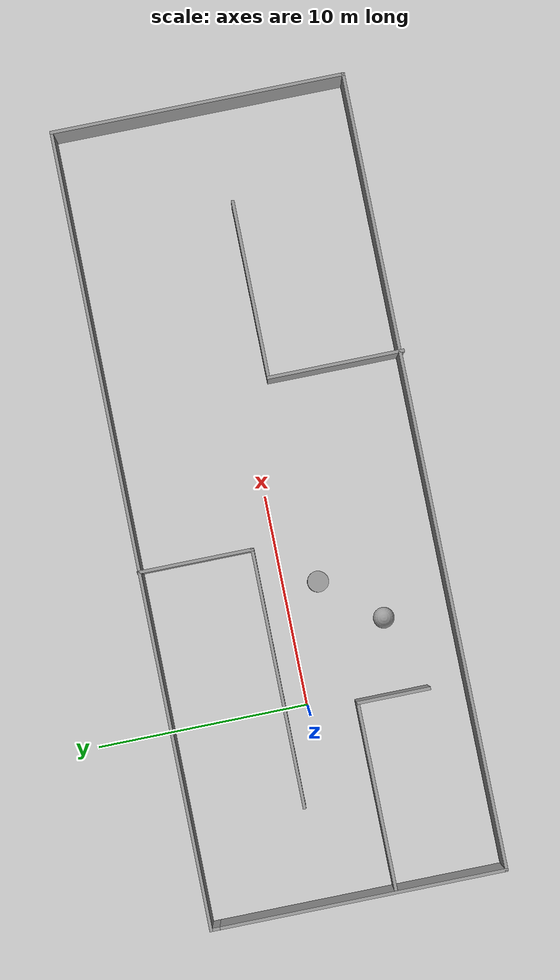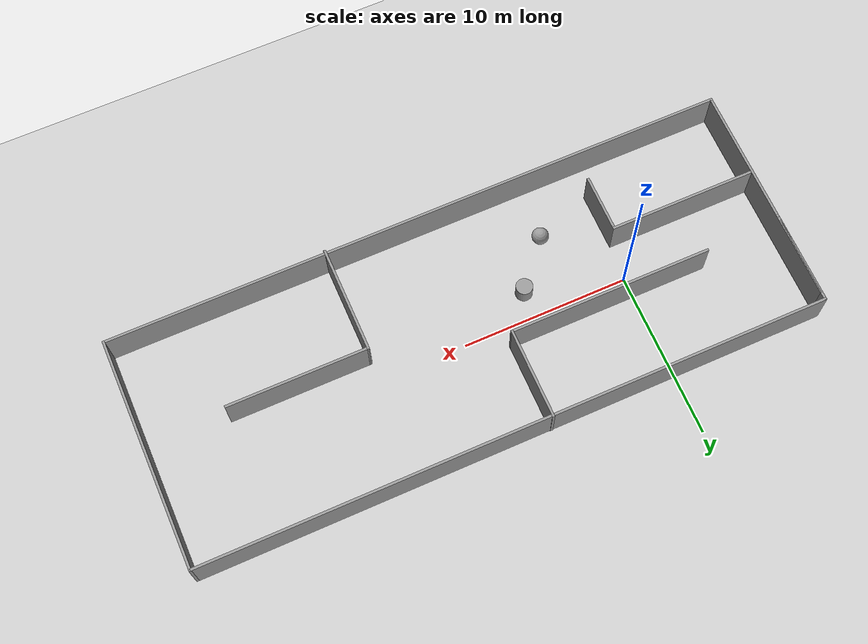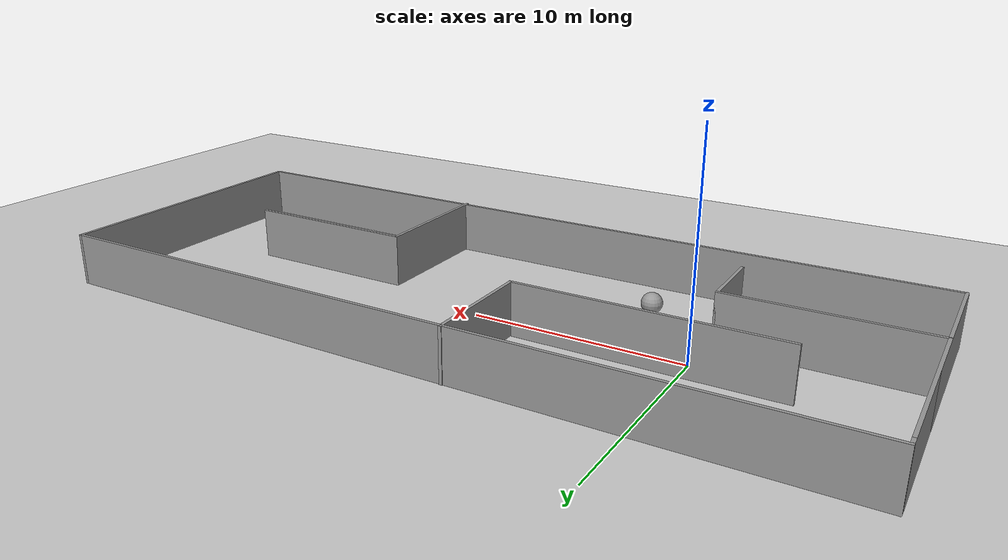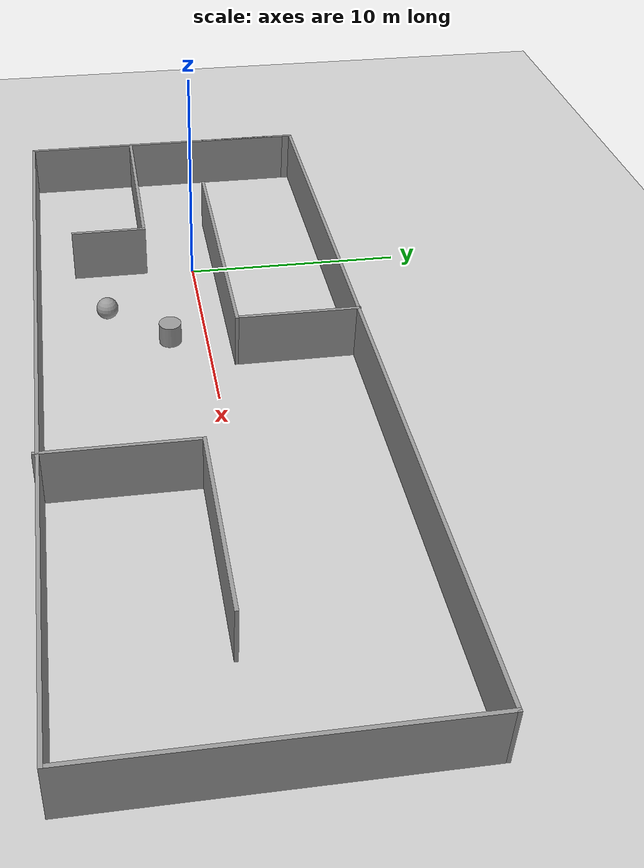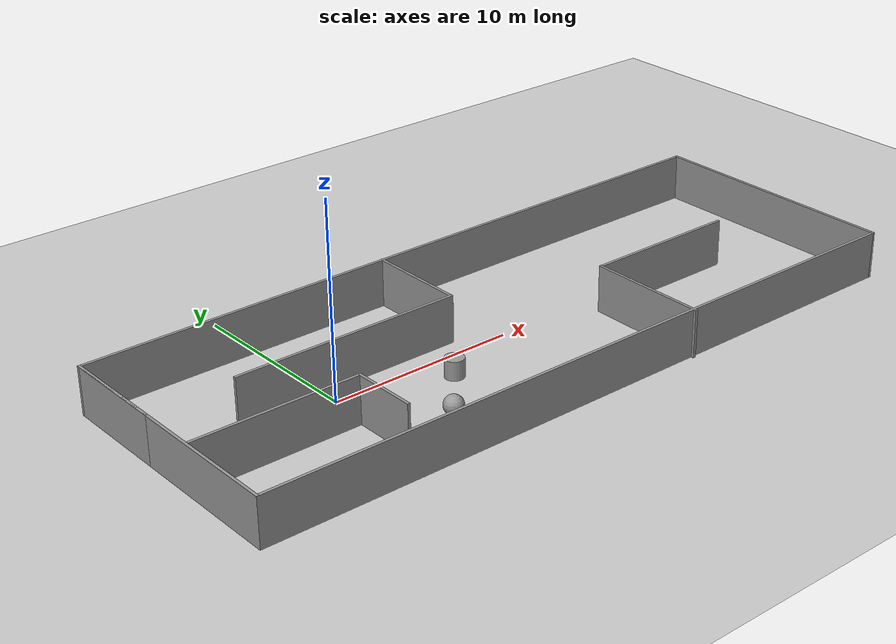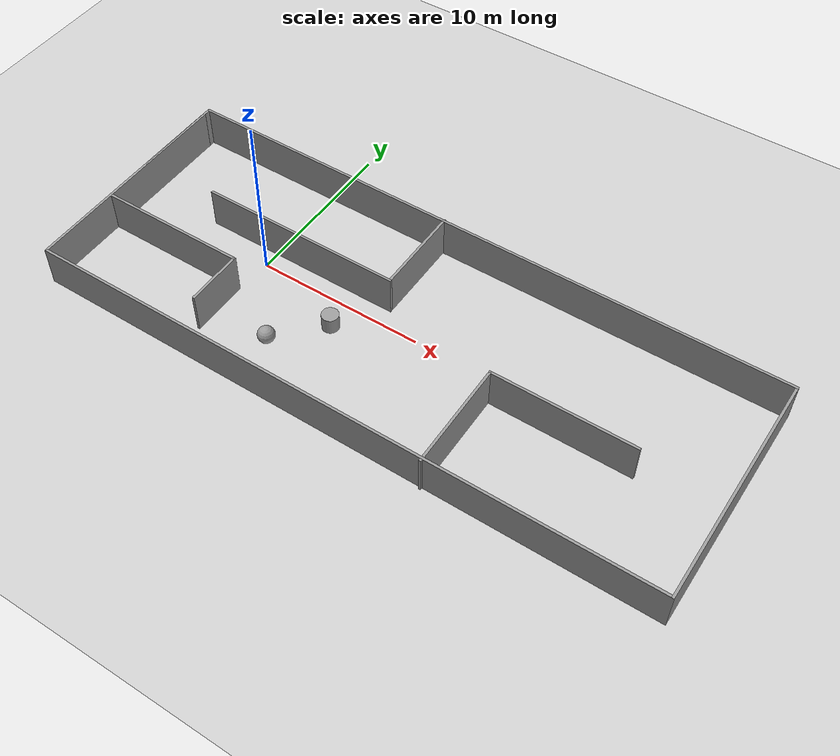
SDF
<sdf version="1.7">
 <world name="default">
  <light name="sun" type="directional">
   <pose>0 0 10 0 -0 0</pose>
   <diffuse>0.8 0.8 0.8 1</diffuse>
   <specular>0.2 0.2 0.2 1</specular>
   <attenuation>
    <range>1000</range>
    <constant>0.9</constant>
    <linear>0.01</linear>
    <quadratic>0.001</quadratic>
   </attenuation>
   <direction>-0.5 0.1 -0.9</direction>
   <spot><inner_angle>0</inner_angle><outer_angle>0</outer_angle><falloff>0</falloff></spot>
  </light>
  <model name="ground_plane">
   <static>1</static>
   <link name="link">
    <collision name="collision">
     <geometry><plane><normal>0 0 1</normal><size>100 100</size></plane></geometry>
     <surface><friction><ode><mu>100</mu><mu2>50</mu2></ode></friction></surface>
    </collision>
    <visual name="visual">
     <cast_shadows>0</cast_shadows>
     <geometry><plane><normal>0 0 1</normal><size>100 100</size></plane></geometry>
     <material>
      <script><uri>file://media/materials/scripts/gazebo.material</uri><name>Gazebo/Grey</name></script>
     </material>
    </visual>
   </link>
  </model>
  <gravity>0 0 -9.8</gravity>
  <magnetic_field>6e-06 2.3e-05 -4.2e-05</magnetic_field>
  <atmosphere type="adiabatic"/>
  <physics type="ode">
   <max_step_size>0.001</max_step_size>
   <real_time_factor>1</real_time_factor>
   <real_time_update_rate>1000</real_time_update_rate>
  </physics>
  <scene><ambient>0.4 0.4 0.4 1</ambient><background>0.7 0.7 0.7 1</background><shadows>1</shadows></scene>
  <audio><device>default</device></audio>
  <spherical_coordinates>
   <surface_model>EARTH_WGS84</surface_model>
   <latitude_deg>0</latitude_deg>
   <longitude_deg>0</longitude_deg>
   <elevation>0</elevation>
   <heading_deg>0</heading_deg>
  </spherical_coordinates>
  <model name="room">
   <pose>9.70484 -0.575634 0 0 -0 0</pose>
   <link name="Wall_12">
    <collision name="Wall_12_Collision">
     <geometry><box><size>13.5 0.15 2.5</size></box></geometry>
     <pose>0 0 1.25 0 -0 0</pose>
    </collision>
    <visual name="Wall_12_Visual">
     <pose>0 0 1.25 0 -0 0</pose>
     <geometry><box><size>13.5 0.15 2.5</size></box></geometry>
     <material>
      <script><uri>file://media/materials/scripts/gazebo.material</uri><name>Gazebo/Grey</name></script>
      <ambient>1 1 1 1</ambient>
     </material>
     <meta><layer>0</layer></meta>
    </visual>
    <pose>-18.8 -0.201197 0 0 -0 -1.5708</pose>
   </link>
   <link name="Wall_13">
    <collision name="Wall_13_Collision">
     <geometry><box><size>37.75 0.15 2.5</size></box></geometry>
     <pose>0 0 1.25 0 -0 0</pose>
    </collision>
    <visual name="Wall_13_Visual">
     <pose>0 0 1.25 0 -0 0</pose>
     <geometry><box><size>37.75 0.15 2.5</size></box></geometry>
     <material>
      <script><uri>file://media/materials/scripts/gazebo.material</uri><name>Gazebo/Grey</name></script>
      <ambient>1 1 1 1</ambient>
     </material>
     <meta><layer>0</layer></meta>
    </visual>
    <pose>-0 -6.8762 0 0 -0 0</pose>
   </link>
   <link name="Wall_14">
    <collision name="Wall_14_Collision">
     <geometry><box><size>14 0.15 2.5</size></box></geometry>
     <pose>0 0 1.25 0 -0 0</pose>
    </collision>
    <visual name="Wall_14_Visual">
     <pose>0 0 1.25 0 -0 0</pose>
     <geometry><box><size>14 0.15 2.5</size></box></geometry>
     <material>
      <script><uri>file://media/materials/scripts/gazebo.material</uri><name>Gazebo/Grey</name></script>
      <ambient>1 1 1 1</ambient>
     </material>
     <meta><layer>0</layer></meta>
    </visual>
    <pose>18.8 0.048803 0 0 -0 1.5708</pose>
   </link>
   <link name="Wall_15">
    <collision name="Wall_15_Collision">
     <geometry><box><size>37.75 0.15 2.5</size></box></geometry>
     <pose>0 0 1.25 0 -0 0</pose>
    </collision>
    <visual name="Wall_15_Visual">
     <pose>0 0 1.25 0 -0 0</pose>
     <geometry><box><size>37.75 0.15 2.5</size></box></geometry>
     <material>
      <script><uri>file://media/materials/scripts/gazebo.material</uri><name>Gazebo/Grey</name></script>
      <ambient>1 1 1 1</ambient>
     </material>
     <meta><layer>0</layer></meta>
    </visual>
    <pose>-0 6.9738 0 0 -0 3.14159</pose>
   </link>
   <link name="Wall_16">
    <collision name="Wall_16_Collision">
     <geometry><box><size>5.75 0.15 2.5</size></box></geometry>
     <pose>0 0 1.25 0 -0 0</pose>
    </collision>
    <visual name="Wall_16_Visual">
     <pose>0 0 1.25 0 -0 0</pose>
     <geometry><box><size>5.75 0.15 2.5</size></box></geometry>
     <material>
      <script><uri>file://media/materials/scripts/gazebo.material</uri><name>Gazebo/Grey</name></script>
      <ambient>1 1 1 1</ambient>
     </material>
     <meta><layer>0</layer></meta>
    </visual>
    <pose>-18.8 4.1738 0 0 -0 -1.5708</pose>
   </link>
   <link name="Wall_18">
    <collision name="Wall_18_Collision">
     <geometry><box><size>9 0.15 2.5</size></box></geometry>
     <pose>0 0 1.25 0 -0 0</pose>
    </collision>
    <visual name="Wall_18_Visual">
     <pose>0 0 1.25 0 -0 0</pose>
     <geometry><box><size>9 0.15 2.5</size></box></geometry>
     <material>
      <script><uri>file://media/materials/scripts/gazebo.material</uri><name>Gazebo/Grey</name></script>
      <ambient>1 1 1 1</ambient>
     </material>
     <meta><layer>0</layer></meta>
    </visual>
    <pose>-14.375 -1.71208 0 0 -0 0</pose>
   </link>
   <link name="Wall_19">
    <collision name="Wall_19_Collision">
     <geometry><box><size>3.5 0.15 2.5</size></box></geometry>
     <pose>0 0 1.25 0 -0 0</pose>
    </collision>
    <visual name="Wall_19_Visual">
     <pose>0 0 1.25 0 -0 0</pose>
     <geometry><box><size>3.5 0.15 2.5</size></box></geometry>
     <material>
      <script><uri>file://media/materials/scripts/gazebo.material</uri><name>Gazebo/Grey</name></script>
      <ambient>1 1 1 1</ambient>
     </material>
     <meta><layer>0</layer></meta>
    </visual>
    <pose>-9.95 -3.38708 0 0 -0 -1.5708</pose>
   </link>
   <link name="Wall_21">
    <collision name="Wall_21_Collision">
     <geometry><box><size>5.5 0.15 2.5</size></box></geometry>
     <pose>0 0 1.25 0 -0 0</pose>
    </collision>
    <visual name="Wall_21_Visual">
     <pose>0 0 1.25 0 -0 0</pose>
     <geometry><box><size>5.5 0.15 2.5</size></box></geometry>
     <material>
      <script><uri>file://media/materials/scripts/gazebo.material</uri><name>Gazebo/Grey</name></script>
      <ambient>1 1 1 1</ambient>
     </material>
     <meta><layer>0</layer></meta>
    </visual>
    <pose>-2.05372 4.33383 0 0 -0 -1.5708</pose>
   </link>
   <link name="Wall_22">
    <collision name="Wall_22_Collision">
     <geometry><box><size>12.25 0.15 2.5</size></box></geometry>
     <pose>0 0 1.25 0 -0 0</pose>
    </collision>
    <visual name="Wall_22_Visual">
     <pose>0 0 1.25 0 -0 0</pose>
     <geometry><box><size>12.25 0.15 2.5</size></box></geometry>
     <material>
      <script><uri>file://media/materials/scripts/gazebo.material</uri><name>Gazebo/Grey</name></script>
      <ambient>1 1 1 1</ambient>
     </material>
     <meta><layer>0</layer></meta>
    </visual>
    <pose>-8.10372 1.65883 0 0 -0 3.14159</pose>
   </link>
   <link name="Wall_24">
    <collision name="Wall_24_Collision">
     <geometry><box><size>6.5 0.15 2.5</size></box></geometry>
     <pose>0 0 1.25 0 -0 0</pose>
    </collision>
    <visual name="Wall_24_Visual">
     <pose>0 0 1.25 0 -0 0</pose>
     <geometry><box><size>6.5 0.15 2.5</size></box></geometry>
     <material>
      <script><uri>file://media/materials/scripts/gazebo.material</uri><name>Gazebo/Grey</name></script>
      <ambient>1 1 1 1</ambient>
     </material>
     <meta><layer>0</layer></meta>
    </visual>
    <pose>5.59714 -3.83383 0 0 -0 1.5708</pose>
   </link>
   <link name="Wall_25">
    <collision name="Wall_25_Collision">
     <geometry><box><size>8.5 0.15 2.5</size></box></geometry>
     <pose>0 0 1.25 0 -0 0</pose>
    </collision>
    <visual name="Wall_25_Visual">
     <pose>0 0 1.25 0 -0 0</pose>
     <geometry><box><size>8.5 0.15 2.5</size></box></geometry>
     <material>
      <script><uri>file://media/materials/scripts/gazebo.material</uri><name>Gazebo/Grey</name></script>
      <ambient>1 1 1 1</ambient>
     </material>
     <meta><layer>0</layer></meta>
    </visual>
    <pose>9.77214 -0.658828 0 0 -0 0</pose>
   </link>
   <static>1</static>
  </model>
  <model name="unit_cylinder">
   <pose>5.6006 -1.63155 0.499993 -3e-06 -4e-06 -0</pose>
   <link name="link">
    <inertial>
     <mass>1</mass>
     <inertia><ixx>0.145833</ixx><ixy>0</ixy><ixz>0</ixz><iyy>0.145833</iyy><iyz>0</iyz><izz>0.125</izz></inertia>
    </inertial>
    <collision name="collision">
     <geometry><cylinder><radius>0.5</radius><length>1</length></cylinder></geometry>
    </collision>
    <visual name="visual">
     <geometry><cylinder><radius>0.5</radius><length>1</length></cylinder></geometry>
     <material>
      <script><name>Gazebo/Grey</name><uri>file://media/materials/scripts/gazebo.material</uri></script>
     </material>
    </visual>
   </link>
  </model>
  <model name="unit_sphere">
   <pose>3.32609 -4.32415 0.5 0 -0 0</pose>
   <link name="link">
    <inertial>
     <mass>1</mass>
     <inertia><ixx>0.1</ixx><ixy>0</ixy><ixz>0</ixz><iyy>0.1</iyy><iyz>0</iyz><izz>0.1</izz></inertia>
    </inertial>
    <collision name="collision"><geometry><sphere><radius>0.5</radius></sphere></geometry></collision>
    <visual name="visual">
     <geometry><sphere><radius>0.5</radius></sphere></geometry>
     <material>
      <script><name>Gazebo/Grey</name><uri>file://media/materials/scripts/gazebo.material</uri></script>
     </material>
    </visual>
   </link>
  </model>
  <light name="user_spot_light_0" type="spot">
   <pose>-7.48575 4.81179 1 0 -0 0</pose>
   <diffuse>0.5 0.5 0.5 1</diffuse>
   <specular>0.1 0.1 0.1 1</specular>
   <direction>0 0 -1</direction>
   <attenuation>
    <range>20</range>
    <constant>0.5</constant>
    <linear>0.01</linear>
    <quadratic>0.001</quadratic>
   </attenuation>
   <cast_shadows>0</cast_shadows>
   <spot><inner_angle>0.6</inner_angle><outer_angle>1</outer_angle><falloff>1</falloff></spot>
  </light>
  <light name="user_point_light_0" type="point">
   <pose>-5.27292 -5.11376 1 0 -0 0</pose>
   <diffuse>0.5 0.5 0.5 1</diffuse>
   <specular>0.1 0.1 0.1 1</specular>
   <attenuation>
    <range>20</range>
    <constant>0.5</constant>
    <linear>0.01</linear>
    <quadratic>0.001</quadratic>
   </attenuation>
   <cast_shadows>0</cast_shadows>
   <direction>0 0 -1</direction>
  </light>
  <light name="user_point_light_1" type="point">
   <pose>-4.62099 4.35219 1 0 -0 0</pose>
   <diffuse>0.5 0.5 0.5 1</diffuse>
   <specular>0.1 0.1 0.1 1</specular>
   <attenuation>
    <range>20</range>
    <constant>0.5</constant>
    <linear>0.01</linear>
    <quadratic>0.001</quadratic>
   </attenuation>
   <cast_shadows>0</cast_shadows>
   <direction>0 0 -1</direction>
  </light>
 </world>
</sdf>
